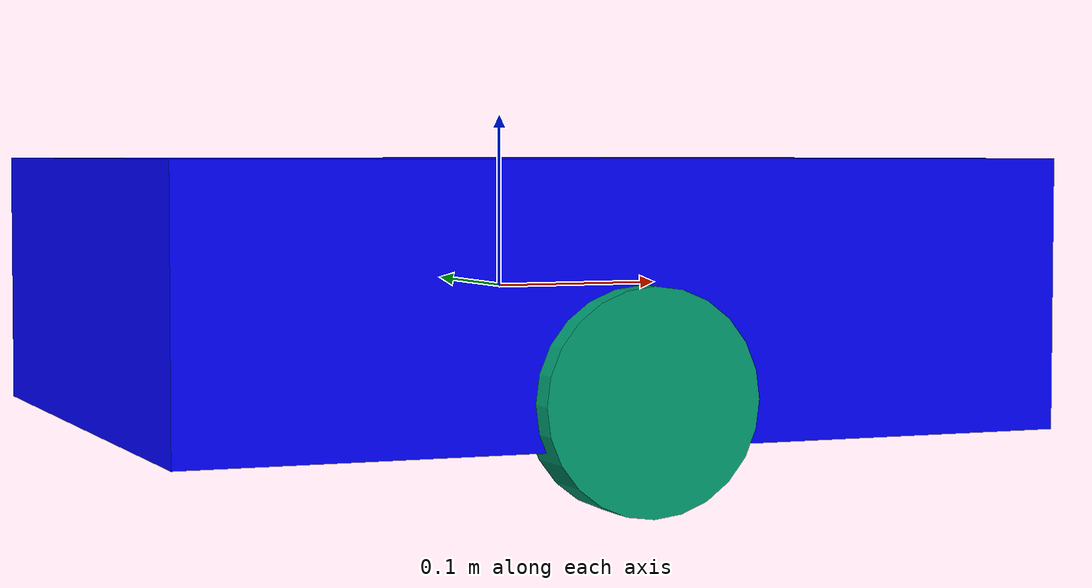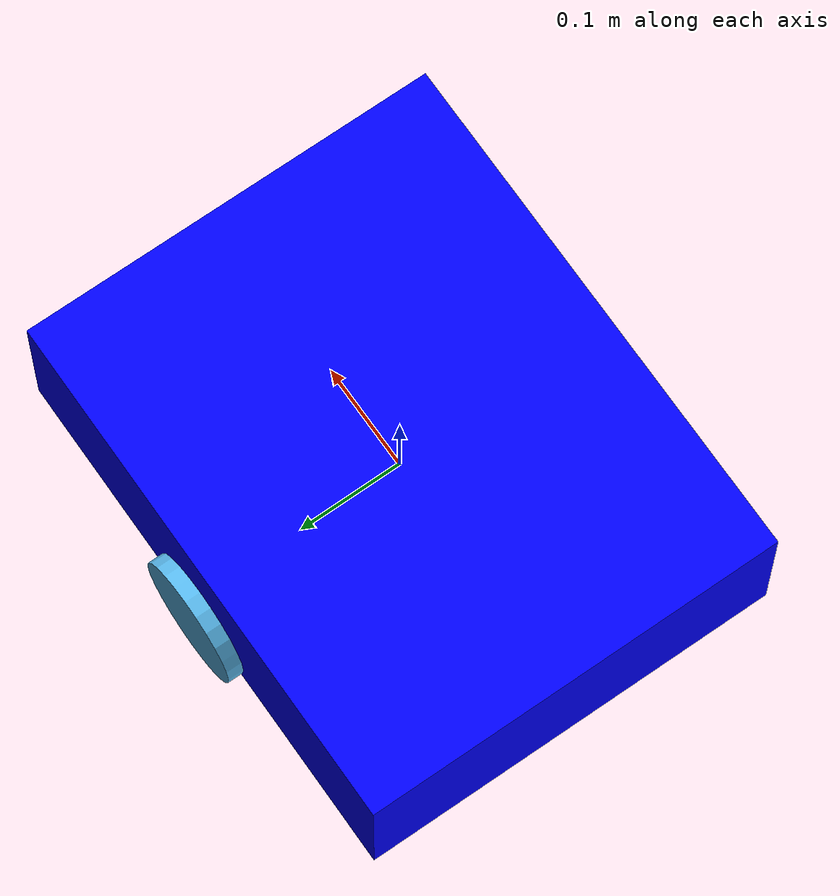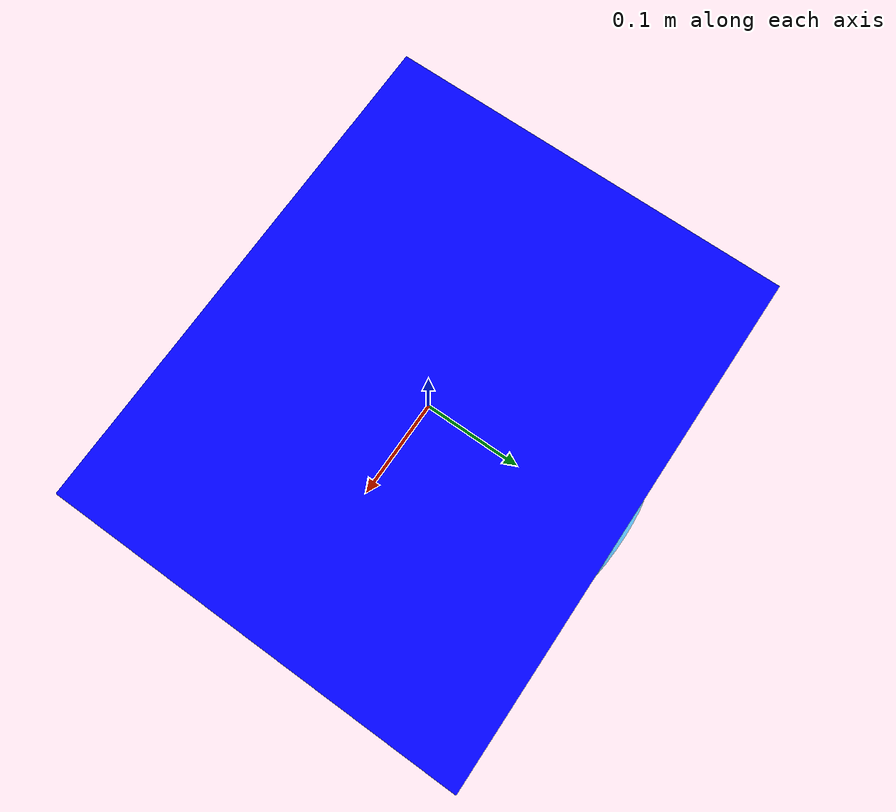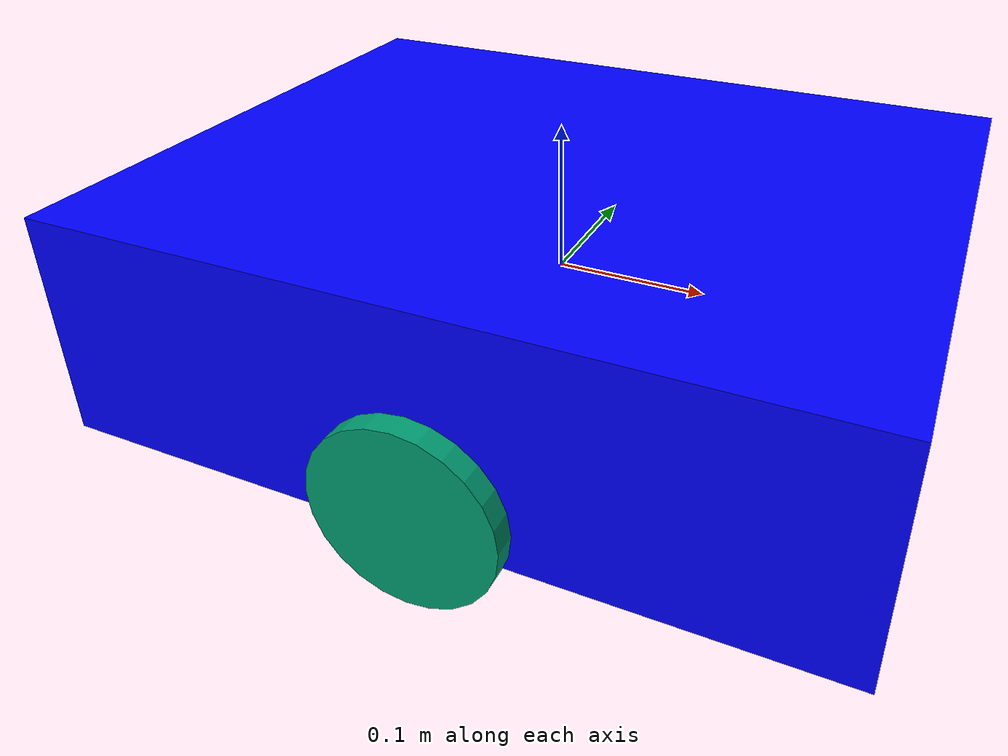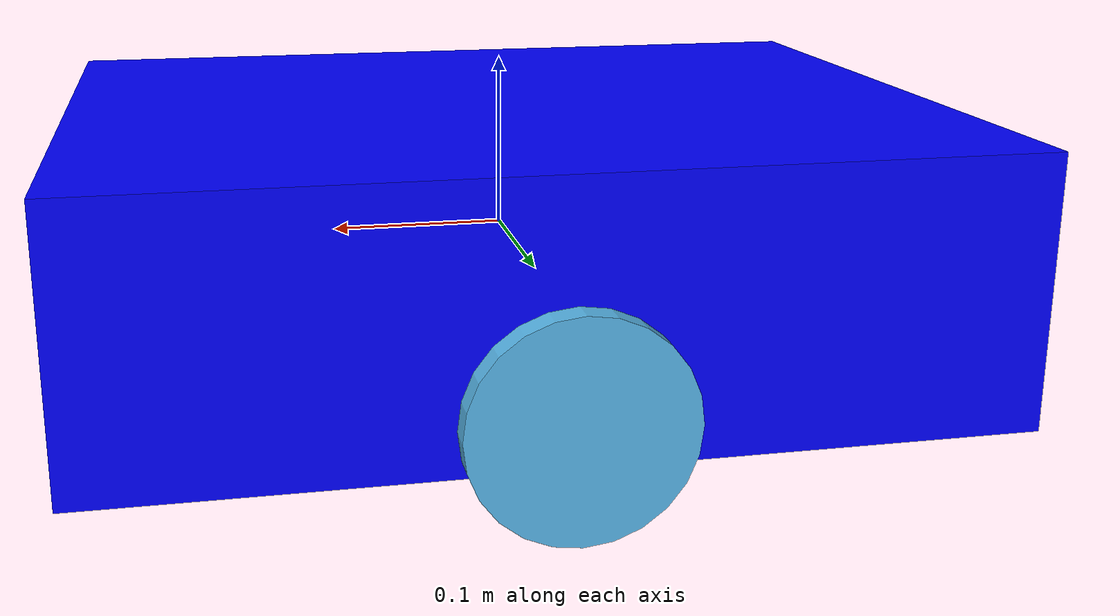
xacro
<?xml version="1.0"?>

<robot name="logistic_cart">

<!-- BASE -->

<link name="base_link">

  <visual>
    <geometry>
      <box size="0.5 0.4 0.15"/>
    </geometry>

    <material name="blue">
      <color rgba="0 0 1 1"/>
    </material>

  </visual>

  <collision>
    <geometry>
      <box size="0.5 0.4 0.15"/>
    </geometry>
  </collision>

  <inertial>
    <mass value="10"/>
    <origin xyz="0 0 0"/>
    <inertia ixx="0.3" iyy="0.3" izz="0.3"
             ixy="0" ixz="0" iyz="0"/>
  </inertial>

</link>

<!-- LEFT WHEEL -->

<link name="left_wheel">

  <visual>
    <origin rpy="1.5708 0 0"/>
    <geometry>
      <cylinder radius="0.06" length="0.03"/>
    </geometry>
  </visual>

  <collision>
    <origin rpy="1.5708 0 0"/>
    <geometry>
      <cylinder radius="0.06" length="0.03"/>
    </geometry>
  </collision>

  <inertial>
    <mass value="1"/>
    <inertia ixx="0.01" iyy="0.01" izz="0.01"
             ixy="0" ixz="0" iyz="0"/>
  </inertial>

</link>

<!-- RIGHT WHEEL -->

<link name="right_wheel">

  <visual>
    <origin rpy="1.5708 0 0"/>
    <geometry>
      <cylinder radius="0.06" length="0.03"/>
    </geometry>
  </visual>

  <collision>
    <origin rpy="1.5708 0 0"/>
    <geometry>
      <cylinder radius="0.06" length="0.03"/>
    </geometry>
  </collision>

  <inertial>
    <mass value="1"/>
    <inertia ixx="0.01" iyy="0.01" izz="0.01"
             ixy="0" ixz="0" iyz="0"/>
  </inertial>

</link>

<!-- LEFT WHEEL JOINT -->

<joint name="left_wheel_joint" type="continuous">

  <parent link="base_link"/>
  <child link="left_wheel"/>

  <origin xyz="0 0.2 -0.05"/>
  <axis xyz="0 1 0"/>

</joint>

<!-- RIGHT WHEEL JOINT -->

<joint name="right_wheel_joint" type="continuous">

  <parent link="base_link"/>
  <child link="right_wheel"/>

  <origin xyz="0 -0.2 -0.05"/>
  <axis xyz="0 1 0"/>

</joint>

<!-- DIFF DRIVE PLUGIN -->

<gazebo>

  <plugin filename="libgz-sim-diff-drive-system.so"
          name="gz::sim::systems::DiffDrive">

    <left_joint>left_wheel_joint</left_joint>
    <right_joint>right_wheel_joint</right_joint>

    <wheel_separation>0.40</wheel_separation>
    <wheel_radius>0.06</wheel_radius>

    <topic>/cmd_vel</topic>

  </plugin>

</gazebo>

</robot>
